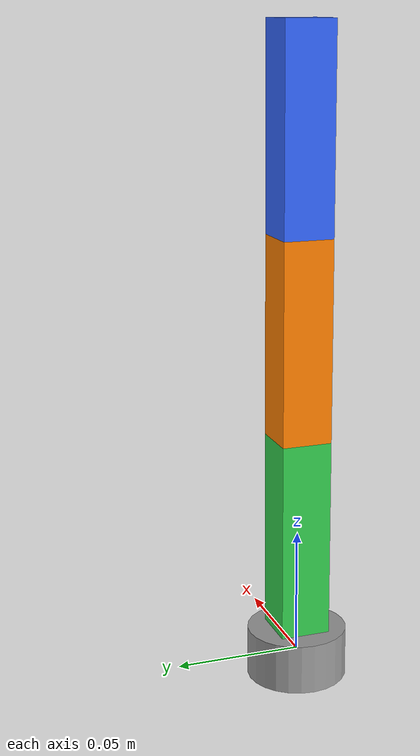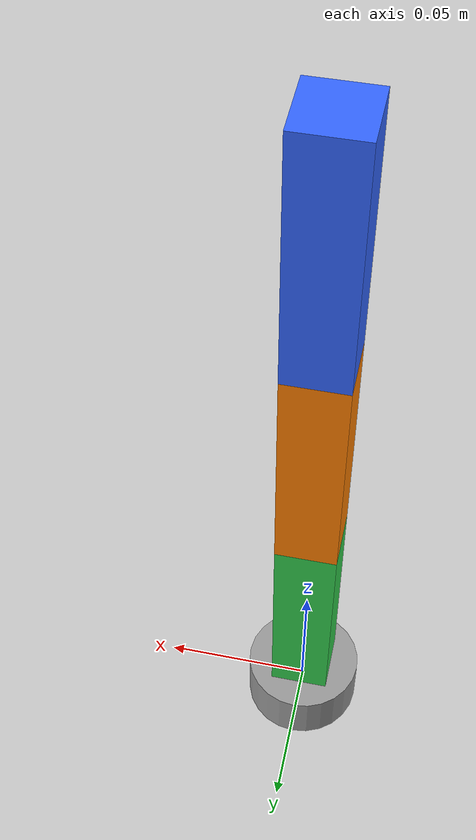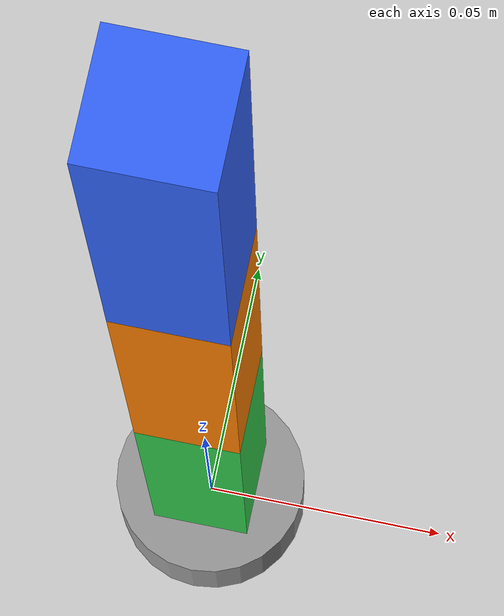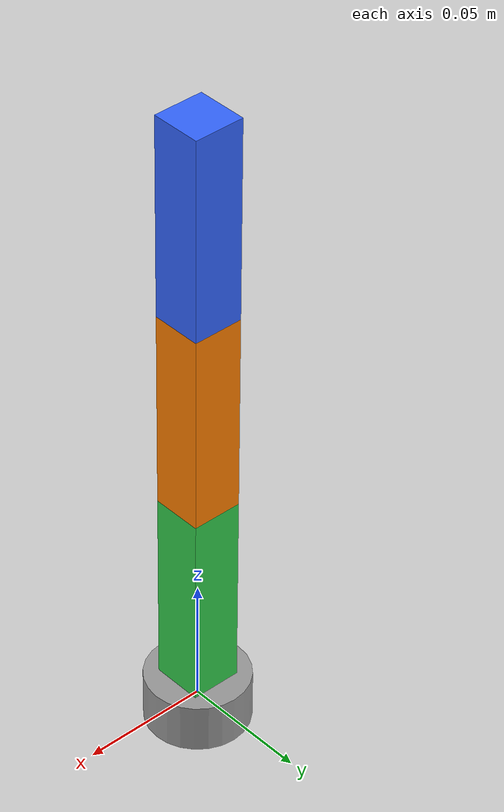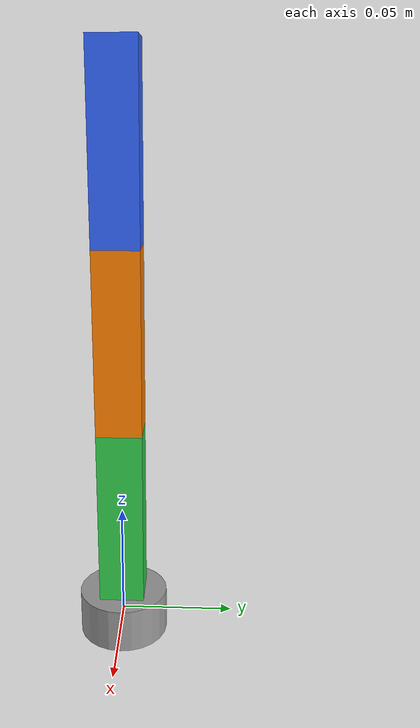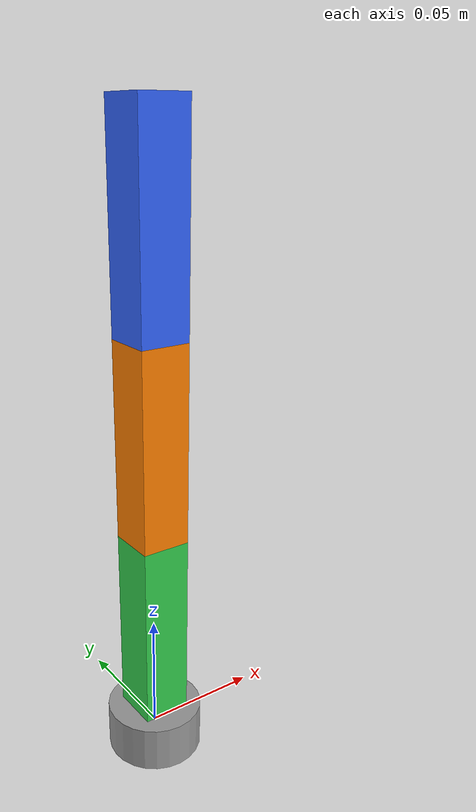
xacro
<?xml version="1.0"?>
<robot name="joint123_bringup" xmlns:xacro="http://www.ros.org/wiki/xacro">

  <!-- Hardware asli: default mengikuti U2D2 yang dipakai Diablo. -->
  <xacro:arg name="port_name" default="/dev/ttyUSB0"/>
  <xacro:arg name="baud_rate" default="1000000"/>

  <link name="base_link">
    <visual>
      <geometry><cylinder radius="0.02" length="0.02"/></geometry>
      <material name="grey"><color rgba="0.6 0.6 0.6 1"/></material>
    </visual>
    <collision>
      <geometry><cylinder radius="0.02" length="0.02"/></geometry>
    </collision>
    <inertial>
      <mass value="0.1"/>
      <inertia ixx="0.0001" ixy="0" ixz="0" iyy="0.0001" iyz="0" izz="0.0001"/>
    </inertial>
  </link>

  <link name="joint1_link">
    <visual>
      <origin xyz="0 0 0.04" rpy="0 0 0"/>
      <geometry><box size="0.02 0.02 0.08"/></geometry>
      <material name="green"><color rgba="0.2 0.8 0.3 1"/></material>
    </visual>
    <collision>
      <origin xyz="0 0 0.04" rpy="0 0 0"/>
      <geometry><box size="0.02 0.02 0.08"/></geometry>
    </collision>
    <inertial>
      <origin xyz="0 0 0.04"/>
      <mass value="0.05"/>
      <inertia ixx="0.00005" ixy="0" ixz="0" iyy="0.00005" iyz="0" izz="0.00002"/>
    </inertial>
  </link>

  <link name="joint2_link">
    <visual>
      <origin xyz="0 0 0.04" rpy="0 0 0"/>
      <geometry><box size="0.02 0.02 0.08"/></geometry>
      <material name="orange"><color rgba="1.0 0.5 0.0 1"/></material>
    </visual>
    <collision>
      <origin xyz="0 0 0.04" rpy="0 0 0"/>
      <geometry><box size="0.02 0.02 0.08"/></geometry>
    </collision>
    <inertial>
      <origin xyz="0 0 0.04"/>
      <mass value="0.05"/>
      <inertia ixx="0.00005" ixy="0" ixz="0" iyy="0.00005" iyz="0" izz="0.00002"/>
    </inertial>
  </link>

  <link name="joint3_link">
    <visual>
      <origin xyz="0 0 0.04" rpy="0 0 0"/>
      <geometry><box size="0.02 0.02 0.08"/></geometry>
      <material name="blue"><color rgba="0.2 0.4 1.0 1"/></material>
    </visual>
    <collision>
      <origin xyz="0 0 0.04" rpy="0 0 0"/>
      <geometry><box size="0.02 0.02 0.08"/></geometry>
    </collision>
    <inertial>
      <origin xyz="0 0 0.04"/>
      <mass value="0.05"/>
      <inertia ixx="0.00005" ixy="0" ixz="0" iyy="0.00005" iyz="0" izz="0.00002"/>
    </inertial>
  </link>

  <!-- Joint fisik disusun serial: ID1 -> ID2 -> ID3. -->
  <joint name="joint1" type="revolute">
    <parent link="base_link"/>
    <child link="joint1_link"/>
    <origin xyz="0 0 0.01" rpy="0 0 0"/>
    <axis xyz="0 0 1"/>
    <limit lower="-3.1415927" upper="3.1415927" effort="2.0" velocity="4.0"/>
  </joint>

  <joint name="joint2" type="revolute">
    <parent link="joint1_link"/>
    <child link="joint2_link"/>
    <origin xyz="0 0 0.08" rpy="0 0 0"/>
    <axis xyz="0 0 1"/>
    <limit lower="-3.1415927" upper="3.1415927" effort="2.0" velocity="4.0"/>
  </joint>

  <joint name="joint3" type="revolute">
    <parent link="joint2_link"/>
    <child link="joint3_link"/>
    <origin xyz="0 0 0.08" rpy="0 0 0"/>
    <axis xyz="0 0 1"/>
    <limit lower="-3.1415927" upper="3.1415927" effort="2.0" velocity="4.0"/>
  </joint>

  <ros2_control name="joint123_system" type="system">
    <hardware>
      <plugin>dynamixel_hardware_interface/DynamixelHardware</plugin>
      <param name="disable_torque_at_init">true</param>
      <param name="port_name">$(arg port_name)</param>
      <param name="baud_rate">$(arg baud_rate)</param>
      <param name="number_of_joints">3</param>
      <param name="number_of_transmissions">3</param>
      <param name="error_timeout_ms">500</param>
      <param name="dynamixel_model_folder">/param/dxl_model</param>
      <param name="transmission_to_joint_matrix">1,0,0,0,1,0,0,0,1</param>
      <param name="joint_to_transmission_matrix">1,0,0,0,1,0,0,0,1</param>
    </hardware>

    <joint name="joint1">
      <command_interface name="position"/>
      <state_interface name="position"/>
      <state_interface name="velocity"/>
      <state_interface name="effort"/>
    </joint>

    <joint name="joint2">
      <command_interface name="position"/>
      <state_interface name="position"/>
      <state_interface name="velocity"/>
      <state_interface name="effort"/>
    </joint>

    <joint name="joint3">
      <command_interface name="position"/>
      <state_interface name="position"/>
      <state_interface name="velocity"/>
      <state_interface name="effort"/>
    </joint>

    <gpio name="dxl1">
      <param name="type">dxl</param>
      <param name="ID">1</param>
      <command_interface name="Goal Position"/>
      <state_interface name="Present Position"/>
      <state_interface name="Present Velocity"/>
      <state_interface name="Present Current"/>
      <param name="Operating Mode">3</param>
      <param name="Position P Gain">800</param>
      <param name="Position I Gain">100</param>
      <param name="Position D Gain">100</param>
    </gpio>

    <gpio name="dxl2">
      <param name="type">dxl</param>
      <param name="ID">2</param>
      <command_interface name="Goal Position"/>
      <state_interface name="Present Position"/>
      <state_interface name="Present Velocity"/>
      <state_interface name="Present Current"/>
      <param name="Operating Mode">3</param>
      <param name="Position P Gain">800</param>
      <param name="Position I Gain">100</param>
      <param name="Position D Gain">100</param>
    </gpio>

    <gpio name="dxl3">
      <param name="type">dxl</param>
      <param name="ID">3</param>
      <command_interface name="Goal Position"/>
      <state_interface name="Present Position"/>
      <state_interface name="Present Velocity"/>
      <state_interface name="Present Current"/>
      <param name="Operating Mode">3</param>
      <param name="Position P Gain">800</param>
      <param name="Position I Gain">100</param>
      <param name="Position D Gain">100</param>
    </gpio>
  </ros2_control>

</robot>
